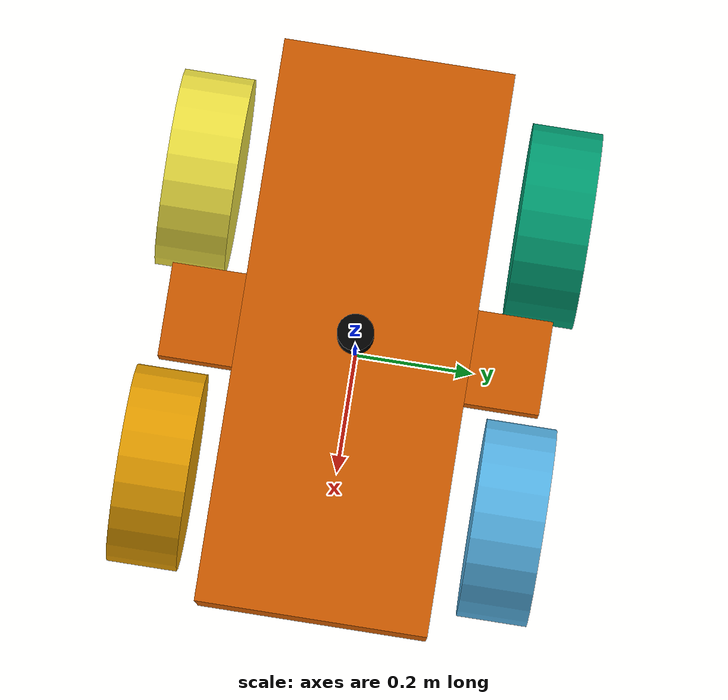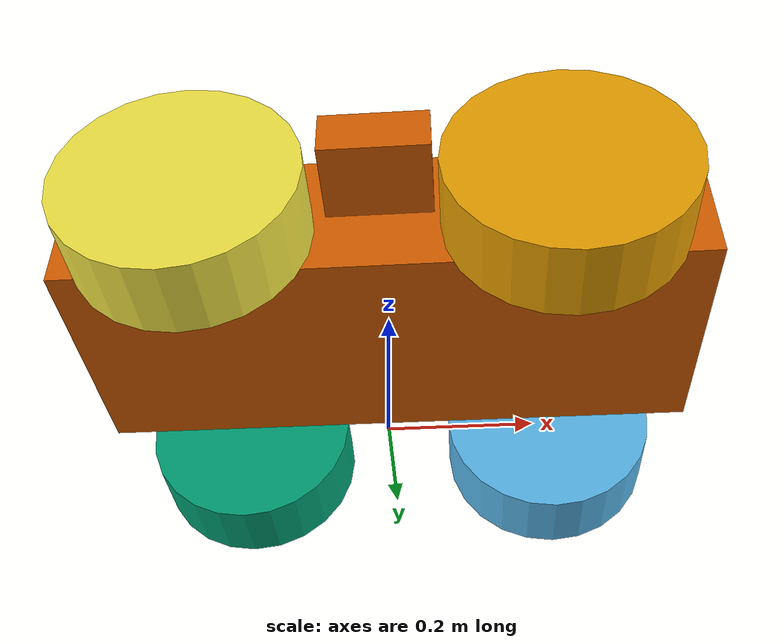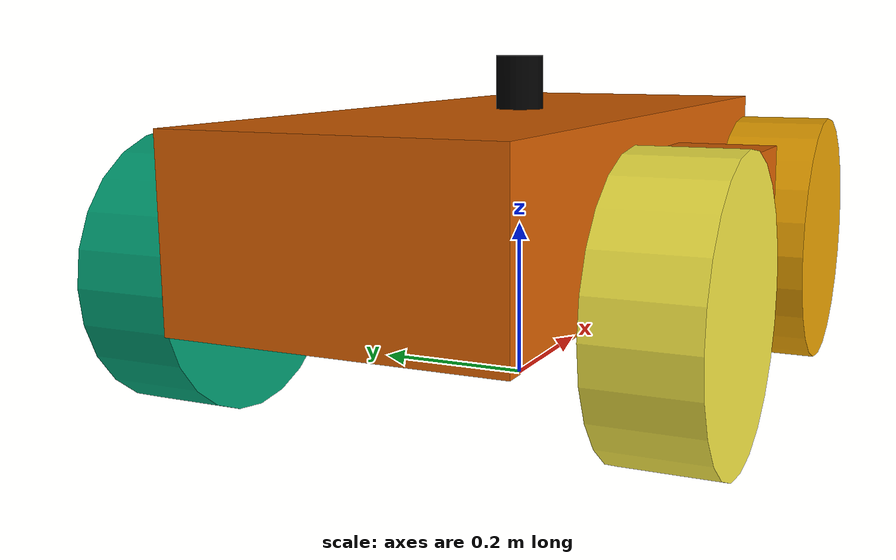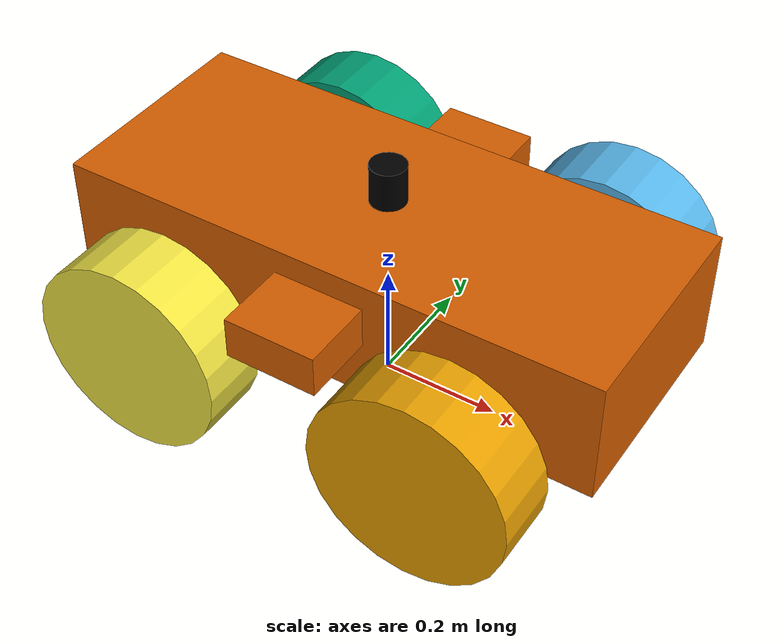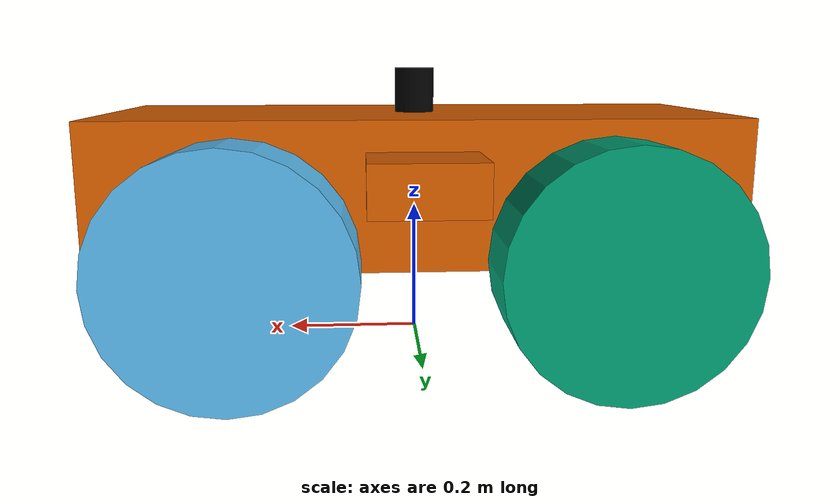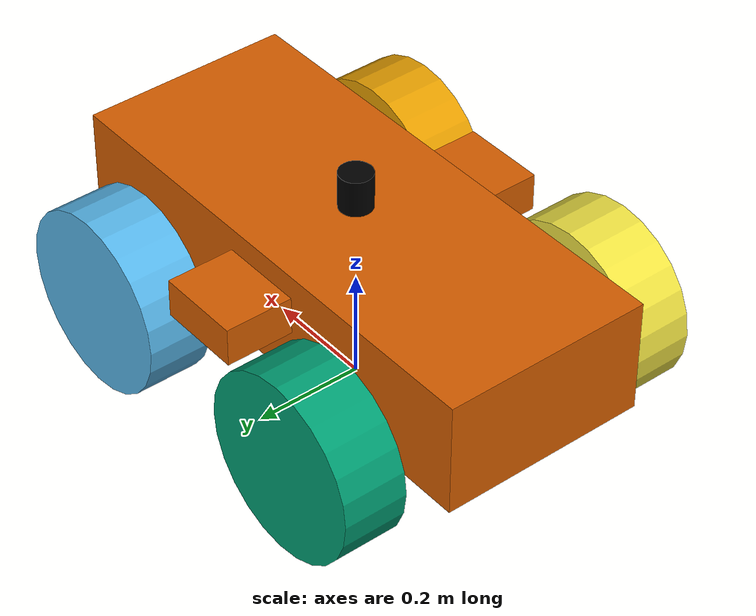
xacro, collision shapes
<?xml version="1.0"?>
<robot name="mybot" xmlns:xacro="http://www.ros.org/wiki/xacro">

  <!-- Gazebo 설정 파일 포함 -->
  <xacro:include filename="mybot.gazebo.xacro"/>

  <!-- Properties (변수) 정의 -->
  <xacro:property name="base_width" value="0.38"/>
  <xacro:property name="base_length" value="0.925"/>
  <xacro:property name="base_height" value="0.21"/>

  <xacro:property name="wheel_radius" value="0.16459"/>
  <xacro:property name="wheel_length" value="0.11653"/>
  <xacro:property name="wheel_mass" value="8.0"/>

  <xacro:property name="wheel_offset_x" value="0.249"/>
  <xacro:property name="wheel_offset_y" value="0.29153"/>
  <xacro:property name="wheel_offset_z" value="-0.0702"/>

  <xacro:property name="camera_size" value="0.02"/>
  <xacro:property name="lidar_radius" value="0.03"/>
  <xacro:property name="lidar_length" value="0.1"/>

  <!-- 재질 정의 -->
  <material name="red"><color rgba="1.0 0.0 0.0 1.0"/></material>
  <material name="black"><color rgba="0 0 0 1"/></material>

  <!-- 바퀴 매크로 정의 -->
  <xacro:macro name="wheel" params="prefix pos_x pos_y pos_z flip wheel_type *origin *axis">
    <link name="${prefix}_wheel_link">
      <visual>
        <geometry><mesh filename="package://mybot_description/meshes/${wheel_type}.dae"/></geometry>
      </visual>
      <collision>
        <origin rpy="1.570795 0 0"/>
        <geometry>
          <cylinder length="${wheel_length}" radius="${wheel_radius}"/>
        </geometry>
      </collision>
      <inertial>
        <mass value="${wheel_mass}"/>
        <inertia ixx="${(1/12) * wheel_mass * (3*wheel_radius*wheel_radius + wheel_length*wheel_length)}" ixy="0" ixz="0"
                 iyy="${(1/12) * wheel_mass * (3*wheel_radius*wheel_radius + wheel_length*wheel_length)}" iyz="0"
                 izz="${(1/2) * wheel_mass * (wheel_radius*wheel_radius)}"/>
      </inertial>
    </link>
    <!--바퀴 joint는 diff_drvie 플러그 연동됨으로 확인 필요함-->
    <joint name="${prefix}_wheel" type="continuous">
      <parent link="base_link"/>
      <child link="${prefix}_wheel_link"/>

      <xacro:insert_block name="origin"/>
      <xacro:insert_block name="axis"/>

      <dynamics damping="0.0" friction="20"/>
    </joint>
    <!-- Gazebo 속성 적용 -->
    <xacro:wheel_gazebo prefix="${prefix}"/>
  </xacro:macro>

  <!-- 바퀴 생성 -->
  <xacro:wheel prefix="front_right" pos_x="${wheel_offset_x}" pos_y="${-wheel_offset_y}" pos_z="${wheel_offset_z}" flip="true" wheel_type="wheel_type1">
    <origin rpy="3.14 0 0" xyz="${wheel_offset_x} ${-wheel_offset_y} ${wheel_offset_z}"/>
    <axis xyz="0 -1 0"/>
  </xacro:wheel>

  <xacro:wheel prefix="front_left" pos_x="${wheel_offset_x}" pos_y="${wheel_offset_y}" pos_z="${wheel_offset_z}" flip="false" wheel_type="wheel_type2">
    <origin rpy="0 0 0" xyz="${wheel_offset_x} ${wheel_offset_y} ${wheel_offset_z}"/>
    <axis xyz="0 1 0"/>
  </xacro:wheel>

  <xacro:wheel prefix="rear_left" pos_x="${-wheel_offset_x}" pos_y="${wheel_offset_y}" pos_z="${wheel_offset_z}" flip="false" wheel_type="wheel_type2">
    <origin rpy="0 0 0" xyz="${-wheel_offset_x} ${wheel_offset_y} ${wheel_offset_z}"/>
    <axis xyz="0 1 0"/>
  </xacro:wheel>

  <xacro:wheel prefix="rear_right" pos_x="${-wheel_offset_x}" pos_y="${-wheel_offset_y}" pos_z="${wheel_offset_z}" flip="true" wheel_type="wheel_type1">
    <origin rpy="3.14 0 0" xyz="${-wheel_offset_x} ${-wheel_offset_y} ${wheel_offset_z}"/>
    <axis xyz="0 -1 0"/>
  </xacro:wheel>

  <!-- Base footprint link -->
  <link name="base_footprint"/>

  <!-- Base link -->
  <link name="base_link">
    <visual>
      <origin rpy="0 0 0" xyz="0 0 0"/>
      <geometry><mesh filename="package://mybot_description/meshes/base_link.dae"/></geometry>
    </visual>
    <collision>
      <origin xyz="0 0 0.008"/>
      <geometry>
        <box size="${base_length} ${base_width} ${base_height}"/>
      </geometry>
    </collision>
    <collision>
      <origin xyz="0 0 0.035"/>
      <geometry>
        <box size="0.154 0.627 0.07"/>
      </geometry>
    </collision>
    <inertial>
      <mass value="50"/>
      <origin xyz="0.0 0.0 0.015"/>
      <inertia ixx="${(1/12) * 50 * (base_width*base_width + base_height*base_height)}" ixy="0" ixz="0"
             iyy="${(1/12) * 50 * (base_length*base_length + base_height*base_height)}" iyz="0"
             izz="${(1/12) * 50 * (base_length*base_length + base_width*base_width)}"/>
    </inertial>
  </link>
  <joint name="base_joint" type="fixed">
    <parent link="base_footprint"/>
    <child link="base_link"/>
    <origin xyz="0 0 0.2352" rpy="0 0 0"/>
  </joint>

  <!-- Camera link -->
  <link name="camera_link">
    <visual>
      <geometry>
        <box size="${camera_size} ${camera_size} ${camera_size}"/>
      </geometry>
      <material name="red"/>
    </visual>
    <collision>
      <geometry>
        <box size="${camera_size} ${camera_size} ${camera_size}"/>
      </geometry>
    </collision>
    <inertial>
      <mass value="0.1"/>
      <inertia ixx="${(1/12) * 0.1 * (camera_size*camera_size + camera_size*camera_size)}" ixy="0" ixz="0"
             iyy="${(1/12) * 0.1 * (camera_size*camera_size + camera_size*camera_size)}" iyz="0"
             izz="${(1/12) * 0.1 * (camera_size*camera_size + camera_size*camera_size)}"/>
    </inertial>
  </link>
  <joint name="camera_joint" type="fixed">
    <parent link="base_link"/>
    <child link="camera_link"/>
    <origin xyz="0.40 0.0 0.04"/>
  </joint>

  <!-- 2D LiDAR Link -->
  <link name="lidar_link">
    <visual>
      <geometry>
        <cylinder radius="${lidar_radius}" length="${lidar_length}"/>
      </geometry>
      <material name="black"/>
    </visual>
    <collision>
      <geometry>
        <cylinder radius="${lidar_radius}" length="${lidar_length}"/>
      </geometry>
    </collision>
    <inertial>
      <mass value="0.1"/>
      <inertia ixx="${(1/12) * 0.1 * (3*lidar_radius*lidar_radius + lidar_length*lidar_length)}" ixy="0" ixz="0"
                 iyy="${(1/12) * 0.1 * (3*lidar_radius*lidar_radius + lidar_length*lidar_length)}" iyz="0"
                 izz="${(1/2) * 0.1 * (lidar_radius*lidar_radius)}"/>
      </inertial>
  </link>
  <joint name="lidar_joint" type="fixed">
    <parent link="base_link"/>
    <child link="lidar_link"/>
    <origin xyz="0 0 0.13" rpy="0 0 0"/>
  </joint>
</robot>
